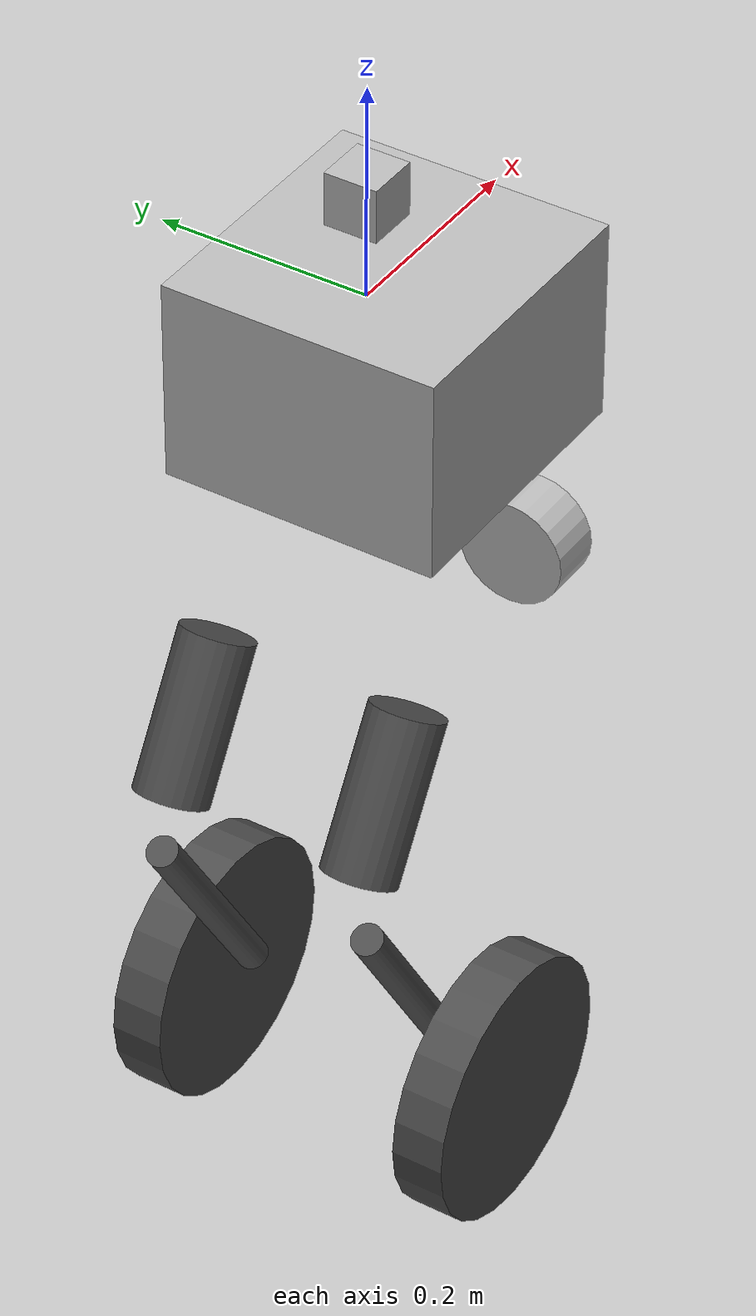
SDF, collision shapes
<sdf version='1.7'>
  <model name='wheel_biped'>
    <link name='base_Link'>
      <inertial>
        <pose>0.04576 0.00014 -0.16398 0 -0 0</pose>
        <mass>9.585</mass>
        <inertia>
          <ixx>0.14011</ixx>
          <ixy>0.000534939</ixy>
          <ixz>0.0281841</ixz>
          <iyy>0.110641</iyy>
          <iyz>-2.7278e-05</iyz>
          <izz>0.0989445</izz>
        </inertia>
      </inertial>
      <collision name='base_Link_collision'>
        <pose>0.03 0 -0.072 0 -0 0</pose>
        <geometry>
          <box>
            <size>0.27 0.26 0.19</size>
          </box>
        </geometry>
      </collision>
      <visual name='base_Link_visual'>
        <pose>0 0 0 0 -0 0</pose>
        <geometry>
          <mesh>
            <scale>1 1 1</scale>
            <uri>model://WF_TRON1A/meshes/base_Link.STL</uri>
          </mesh>
        </geometry>
      </visual>
    </link>
    <link name = "lidar_Link">
      <pose>0.0 0.0 0.1 0.0 0.0 0.0</pose>
      <inertial>
        <mass>0.1</mass>
        <inertia>
          <ixx>0.0001</ixx>
          <ixy>0.0</ixy>
          <ixz>0.0</ixz>
          <iyy>0.0001</iyy>
          <iyz>0.0</iyz>
          <izz>0.0001</izz>
        </inertia>
      </inertial>
      <collision name = "lidar_collision">
        <geometry>
          <box>
            <size>0.05 0.05 0.05</size>
          </box>
        </geometry>
      </collision>
      <visual name='lidar_visual'>
        <pose>0 0 0 0 -0 0</pose>
        <geometry>
          <mesh>
            <scale>1 1 1</scale>
            <uri>model://meshes/livox_mid-360-90x.dae</uri>
          </mesh>
        </geometry>
      </visual>

      <sensor type="ray" name="laser_livox">
        <pose>0 0 0.05 0 0 0</pose>
        <visualize>true</visualize>
        <always_on>True</always_on>
        <update_rate>10</update_rate>
        <!-- This ray plgin is only for visualization. -->
        <plugin name="gazebo_ros_laser_controller" filename="liblivox_laser_simulation.so">
			  <ray>
			  <scan>
				  <horizontal>
				    <samples>100</samples>
				    <resolution>1</resolution>
				    <min_angle>-3.1415926535897931</min_angle>
            <max_angle>3.1415926535897931</max_angle>
				  </horizontal>
				  <vertical>
				    <samples>50</samples>
				    <resolution>1</resolution>
				    <min_angle>-3.1415926535897931</min_angle>
            <max_angle>3.1415926535897931</max_angle>
				  </vertical>
			  </scan>
			  <range>
				  <min>0.1</min>
				  <max>40</max>
				  <resolution>1</resolution>
			  </range>
			  <noise>
				  <type>gaussian</type>
				  <mean>0.0</mean>
				  <stddev>0.0</stddev>
			  </noise>
			  </ray>
          <visualize>True</visualize>
		      <samples>20000</samples>
		      <downsample>1</downsample>
		      <csv_file_name>mid360-real-centr.csv</csv_file_name>
          <publish_pointcloud_type>2</publish_pointcloud_type>
		      <ros_topic>/livox/lidar</ros_topic>
          <frameName>base_link</frameName>
        </plugin>
      </sensor>

    </link>

    <joint name="lidar_joint" type="fixed">
      <parent>base_Link</parent>
      <child>lidar_Link</child>
      <pose>0 0 0.1 0 0 0</pose>
    </joint>

    <joint name='abad_L_Joint' type='revolute'>
      <pose relative_to='base_Link'>0.05556 0.105 -0.2602 0 -0 0</pose>
      <parent>base_Link</parent>
      <child>abad_L_Link</child>
      <axis>
        <xyz>1 0 0</xyz>
        <limit>
          <lower>-0.38397</lower>
          <upper>1.39626</upper>
          <effort>80</effort>
          <velocity>15</velocity>
        </limit>
        <dynamics>
          <spring_reference>0</spring_reference>
          <spring_stiffness>0</spring_stiffness>
        </dynamics>
      </axis>
    </joint>
    <link name='abad_L_Link'>
      <pose relative_to='abad_L_Joint'>0 0 0 0 -0 0</pose>
      <inertial>
        <pose>-0.06977 0.04479 0.00057 0 -0 0</pose>
        <mass>1.469</mass>
        <inertia>
          <ixx>0.00155538</ixx>
          <ixy>0.00039778</ixy>
          <ixz>-1.31e-05</ixz>
          <iyy>0.00235925</iyy>
          <iyz>-9.8e-07</iyz>
          <izz>0.00208092</izz>
        </inertia>
      </inertial>
      <collision name='abad_L_Link_collision'>
        <pose>0.03 0 0 1.57 -0 1.57</pose>
        <geometry>
          <cylinder>
            <length>0.05</length>
            <radius>0.05</radius>
          </cylinder>
        </geometry>
      </collision>
      <visual name='abad_L_Link_visual'>
        <pose>0 0 0 0 -0 0</pose>
        <geometry>
          <mesh>
            <scale>1 1 1</scale>
            <uri>model://WF_TRON1A/meshes/abad_L_Link.STL</uri>
          </mesh>
        </geometry>
      </visual>
    </link>
    <joint name='hip_L_Joint' type='revolute'>
      <pose relative_to='abad_L_Link'>-0.077 0.0205 0 0 -0 0</pose>
      <parent>abad_L_Link</parent>
      <child>hip_L_Link</child>
      <axis>
        <xyz>0 1 0</xyz>
        <limit>
          <lower>-1.01229</lower>
          <upper>1.39626</upper>
          <effort>80</effort>
          <velocity>15</velocity>
        </limit>
        <dynamics>
          <spring_reference>0</spring_reference>
          <spring_stiffness>0</spring_stiffness>
        </dynamics>
      </axis>
    </joint>
    <link name='hip_L_Link'>
      <pose relative_to='hip_L_Joint'>0 0 0 0 -0 0</pose>
      <inertial>
        <pose>-0.02869 -0.0477 -0.03992 0 -0 0</pose>
        <mass>2.3</mass>
        <inertia>
          <ixx>0.0169373</ixx>
          <ixy>0.00164703</ixy>
          <ixz>-0.00923253</ixz>
          <iyy>0.0228533</iyy>
          <iyz>0.0022024</iyz>
          <izz>0.00933419</izz>
        </inertia>
      </inertial>
      <collision name='hip_L_Link_collision'>
        <pose>-0.1 -0.03 -0.14 0 0.53 0</pose>
        <geometry>
          <cylinder>
            <length>0.15</length>
            <radius>0.035</radius>
          </cylinder>
        </geometry>
        <surface>
          <contact>
            <ode/>
          </contact>
          <friction>
            <ode>
              <mu>0.2</mu>
              <mu2>0.2</mu2>
            </ode>
          </friction>
        </surface>
      </collision>
      <visual name='hip_L_Link_visual'>
        <pose>0 0 0 0 -0 0</pose>
        <geometry>
          <mesh>
            <scale>1 1 1</scale>
            <uri>model://WF_TRON1A/meshes/hip_L_Link.STL</uri>
          </mesh>
        </geometry>
        <material>
          <script>
            <name>Gazebo/DarkGrey</name>
            <uri>file://media/materials/scripts/gazebo.material</uri>
          </script>
        </material>
      </visual>
    </link>
    <joint name='knee_L_Joint' type='revolute'>
      <pose relative_to='hip_L_Link'>-0.15 -0.0205 -0.25981 0 -0 0</pose>
      <parent>hip_L_Link</parent>
      <child>knee_L_Link</child>
      <axis>
        <xyz>0 -1 0</xyz>
        <limit>
          <lower>-0.872665</lower>
          <upper>1.36136</upper>
          <effort>80</effort>
          <velocity>15</velocity>
        </limit>
        <dynamics>
          <spring_reference>0</spring_reference>
          <spring_stiffness>0</spring_stiffness>
        </dynamics>
      </axis>
    </joint>
    <link name='knee_L_Link'>
      <pose relative_to='knee_L_Joint'>0 0 0 0 -0 0</pose>
      <inertial>
        <pose>0.11913 0.01106 -0.20363 0 -0 0</pose>
        <mass>1.49</mass>
        <inertia>
          <ixx>0.0132328</ixx>
          <ixy>-0.00043546</ixy>
          <ixz>0.00693569</ixz>
          <iyy>0.0176614</iyy>
          <iyz>0.00079087</iyz>
          <izz>0.00501698</izz>
        </inertia>
      </inertial>
      <collision name='knee_L_Link_collision'>
        <pose>0.078 0 -0.12 0 -0.55 0</pose>
        <geometry>
          <cylinder>
            <length>0.26</length>
            <radius>0.015</radius>
          </cylinder>
        </geometry>
        <surface>
          <contact>
            <ode>
              <kp>1e+06</kp>
              <kd>100</kd>
            </ode>
          </contact>
          <friction>
            <ode>
              <mu>0.2</mu>
              <mu2>0.2</mu2>
            </ode>
          </friction>
        </surface>
      </collision>
      <visual name='knee_L_Link_visual'>
        <pose>0 0 0 0 -0 0</pose>
        <geometry>
          <mesh>
            <scale>1 1 1</scale>
            <uri>model://WF_TRON1A/meshes/knee_L_Link.STL</uri>
          </mesh>
        </geometry>
        <material>
          <script>
            <name>Gazebo/DarkGrey</name>
            <uri>file://media/materials/scripts/gazebo.material</uri>
          </script>
        </material>
      </visual>
      <self_collide>0</self_collide>
    </link>
    <joint name='wheel_L_Joint' type='revolute'>
      <pose relative_to='knee_L_Link'>0.15 0.0435 -0.25981 0 -0 0</pose>
      <parent>knee_L_Link</parent>
      <child>wheel_L_Link</child>
      <axis>
        <xyz>0 1 0</xyz>
        <limit>
          <lower>-1e+06</lower>
          <upper>1e+06</upper>
          <effort>40</effort>
          <velocity>40</velocity>
        </limit>
        <dynamics>
          <damping>0</damping>
          <friction>0.01</friction>
          <spring_reference>0</spring_reference>
          <spring_stiffness>0</spring_stiffness>
        </dynamics>
      </axis>
    </joint>
    <link name='wheel_L_Link'>
      <pose relative_to='wheel_L_Joint'>0 0 0 0 -0 0</pose>
      <inertial>
        <pose>3e-05 0.00807 -2e-05 0 -0 0</pose>
        <mass>1.08</mass>
        <inertia>
          <ixx>0.00515512</ixx>
          <ixy>1e-08</ixy>
          <ixz>-9.7e-07</ixz>
          <iyy>0.00974272</iyy>
          <iyz>-1e-08</iyz>
          <izz>0.005154</izz>
        </inertia>
      </inertial>
      <collision name='wheel_L_Link_collision'>
        <pose>0 0 0 1.5708 -0 0</pose>
        <geometry>
          <cylinder>
            <length>0.05</length>
            <radius>0.127</radius>
          </cylinder>
        </geometry>
        <surface>
          <contact>
            <ode>
              <kp>1e+06</kp>
              <kd>1</kd>
            </ode>
          </contact>
          <friction>
            <ode>
              <mu>0.6</mu>
              <mu2>0.6</mu2>
            </ode>
          </friction>
        </surface>
      </collision>
      <visual name='wheel_L_Link_visual'>
        <pose>0 0 0 0 -0 0</pose>
        <geometry>
          <mesh>
            <scale>1 1 1</scale>
            <uri>model://WF_TRON1A/meshes/wheel_L_Link.STL</uri>
          </mesh>
        </geometry>
        <material>
          <script>
            <name>Gazebo/DarkGrey</name>
            <uri>file://media/materials/scripts/gazebo.material</uri>
          </script>
        </material>
      </visual>
      <self_collide>1</self_collide>
    </link>
    <joint name='abad_R_Joint' type='revolute'>
      <pose relative_to='base_Link'>0.05556 -0.105 -0.2602 0 -0 0</pose>
      <parent>base_Link</parent>
      <child>abad_R_Link</child>
      <axis>
        <xyz>1 0 0</xyz>
        <limit>
          <lower>-1.39626</lower>
          <upper>0.38397</upper>
          <effort>80</effort>
          <velocity>15</velocity>
        </limit>
        <dynamics>
          <spring_reference>0</spring_reference>
          <spring_stiffness>0</spring_stiffness>
        </dynamics>
      </axis>
    </joint>
    <link name='abad_R_Link'>
      <pose relative_to='abad_R_Joint'>0 0 0 0 -0 0</pose>
      <inertial>
        <pose>-0.06977 -0.04479 0.00057 0 -0 0</pose>
        <mass>1.469</mass>
        <inertia>
          <ixx>0.00155538</ixx>
          <ixy>-0.00039778</ixy>
          <ixz>-1.31e-05</ixz>
          <iyy>0.00235925</iyy>
          <iyz>9.8e-07</iyz>
          <izz>0.00208092</izz>
        </inertia>
      </inertial>
      <collision name='abad_R_Link_collision'>
        <pose>0.03 0 0 1.57 -0 1.57</pose>
        <geometry>
          <cylinder>
            <length>0.05</length>
            <radius>0.05</radius>
          </cylinder>
        </geometry>
      </collision>
      <visual name='abad_R_Link_visual'>
        <pose>0 0 0 0 -0 0</pose>
        <geometry>
          <mesh>
            <scale>1 1 1</scale>
            <uri>model://WF_TRON1A/meshes/abad_R_Link.STL</uri>
          </mesh>
        </geometry>
      </visual>
    </link>
    <joint name='hip_R_Joint' type='revolute'>
      <pose relative_to='abad_R_Link'>-0.077 -0.0205 0 0 -0 0</pose>
      <parent>abad_R_Link</parent>
      <child>hip_R_Link</child>
      <axis>
        <xyz>0 -1 0</xyz>
        <limit>
          <lower>-1.39626</lower>
          <upper>1.01229</upper>
          <effort>80</effort>
          <velocity>15</velocity>
        </limit>
        <dynamics>
          <spring_reference>0</spring_reference>
          <spring_stiffness>0</spring_stiffness>
        </dynamics>
      </axis>
    </joint>
    <link name='hip_R_Link'>
      <pose relative_to='hip_R_Joint'>0 0 0 0 -0 0</pose>
      <inertial>
        <pose>-0.02869 0.0477 -0.03992 0 -0 0</pose>
        <mass>2.3</mass>
        <inertia>
          <ixx>0.0169373</ixx>
          <ixy>-0.00164703</ixy>
          <ixz>-0.00923253</ixz>
          <iyy>0.0228533</iyy>
          <iyz>-0.0022024</iyz>
          <izz>0.00933419</izz>
        </inertia>
      </inertial>
      <collision name='hip_R_Link_collision'>
        <pose>-0.1 0.03 -0.14 0 0.53 0</pose>
        <geometry>
          <cylinder>
            <length>0.15</length>
            <radius>0.035</radius>
          </cylinder>
        </geometry>
        <surface>
          <contact>
            <ode/>
          </contact>
          <friction>
            <ode>
              <mu>0.2</mu>
              <mu2>0.2</mu2>
            </ode>
          </friction>
        </surface>
      </collision>
      <visual name='hip_R_Link_visual'>
        <pose>0 0 0 0 -0 0</pose>
        <geometry>
          <mesh>
            <scale>1 1 1</scale>
            <uri>model://WF_TRON1A/meshes/hip_R_Link.STL</uri>
          </mesh>
        </geometry>
        <material>
          <script>
            <name>Gazebo/DarkGrey</name>
            <uri>file://media/materials/scripts/gazebo.material</uri>
          </script>
        </material>
      </visual>
    </link>
    <joint name='knee_R_Joint' type='revolute'>
      <pose relative_to='hip_R_Link'>-0.15 0.0205 -0.25981 0 -0 0</pose>
      <parent>hip_R_Link</parent>
      <child>knee_R_Link</child>
      <axis>
        <xyz>0 1 0</xyz>
        <limit>
          <lower>-1.36136</lower>
          <upper>0.872665</upper>
          <effort>80</effort>
          <velocity>15</velocity>
        </limit>
        <dynamics>
          <spring_reference>0</spring_reference>
          <spring_stiffness>0</spring_stiffness>
        </dynamics>
      </axis>
    </joint>
    <link name='knee_R_Link'>
      <pose relative_to='knee_R_Joint'>0 0 0 0 -0 0</pose>
      <inertial>
        <pose>0.11913 -0.01106 -0.20363 0 -0 0</pose>
        <mass>1.49</mass>
        <inertia>
          <ixx>0.0132328</ixx>
          <ixy>0.00043546</ixy>
          <ixz>0.00693569</ixz>
          <iyy>0.0176614</iyy>
          <iyz>-0.00079087</iyz>
          <izz>0.00501698</izz>
        </inertia>
      </inertial>
      <collision name='knee_R_Link_collision'>
        <pose>0.078 0 -0.12 0 -0.55 0</pose>
        <geometry>
          <cylinder>
            <length>0.26</length>
            <radius>0.015</radius>
          </cylinder>
        </geometry>
        <surface>
          <contact>
            <ode>
              <kp>1e+06</kp>
              <kd>100</kd>
            </ode>
          </contact>
          <friction>
            <ode>
              <mu>0.2</mu>
              <mu2>0.2</mu2>
            </ode>
          </friction>
        </surface>
      </collision>
      <visual name='knee_R_Link_visual'>
        <pose>0 0 0 0 -0 0</pose>
        <geometry>
          <mesh>
            <scale>1 1 1</scale>
            <uri>model://WF_TRON1A/meshes/knee_R_Link.STL</uri>
          </mesh>
        </geometry>
        <material>
          <script>
            <name>Gazebo/DarkGrey</name>
            <uri>file://media/materials/scripts/gazebo.material</uri>
          </script>
        </material>
      </visual>
      <self_collide>0</self_collide>
    </link>
    <joint name='wheel_R_Joint' type='revolute'>
      <pose relative_to='knee_R_Link'>0.15 -0.0435 -0.25981 0 -0 0</pose>
      <parent>knee_R_Link</parent>
      <child>wheel_R_Link</child>
      <axis>
        <xyz>0 1 0</xyz>
        <limit>
          <lower>-1e+06</lower>
          <upper>1e+06</upper>
          <effort>40</effort>
          <velocity>40</velocity>
        </limit>
        <dynamics>
          <damping>0</damping>
          <friction>0.01</friction>
          <spring_reference>0</spring_reference>
          <spring_stiffness>0</spring_stiffness>
        </dynamics>
      </axis>
    </joint>
    <link name='wheel_R_Link'>
      <pose relative_to='wheel_R_Joint'>0 0 0 0 -0 0</pose>
      <inertial>
        <pose>3e-05 -0.00807 -2e-05 0 -0 0</pose>
        <mass>1.08</mass>
        <inertia>
          <ixx>0.00515512</ixx>
          <ixy>-1e-08</ixy>
          <ixz>-9.7e-07</ixz>
          <iyy>0.00974272</iyy>
          <iyz>1e-08</iyz>
          <izz>0.005154</izz>
        </inertia>
      </inertial>
      <collision name='wheel_R_Link_collision'>
        <pose>0 0 0 1.5708 -0 0</pose>
        <geometry>
          <cylinder>
            <length>0.05</length>
            <radius>0.127</radius>
          </cylinder>
        </geometry>
        <surface>
          <contact>
            <ode>
              <kp>1e+06</kp>
              <kd>1</kd>
            </ode>
          </contact>
          <friction>
            <ode>
              <mu>0.6</mu>
              <mu2>0.6</mu2>
            </ode>
          </friction>
        </surface>
      </collision>
      <visual name='wheel_R_Link_visual'>
        <pose>0 0 0 0 -0 0</pose>
        <geometry>
          <mesh>
            <scale>1 1 1</scale>
            <uri>model://WF_TRON1A/meshes/wheel_R_Link.STL</uri>
          </mesh>
        </geometry>
        <material>
          <script>
            <name>Gazebo/DarkGrey</name>
            <uri>file://media/materials/scripts/gazebo.material</uri>
          </script>
        </material>
      </visual>
      <self_collide>1</self_collide>
    </link>
    <joint name='limx_imu_joint' type='revolute'>
      <pose relative_to='base_Link'>0 0 0 0 -0 0</pose>
      <parent>base_Link</parent>
      <child>limx_imu</child>
      <axis>
        <limit>
          <lower>0</lower>
          <upper>0</upper>
        </limit>
        <dynamics>
          <damping>0</damping>
          <friction>0</friction>
          <spring_reference>0</spring_reference>
          <spring_stiffness>0</spring_stiffness>
        </dynamics>
        <xyz>0 0 1</xyz>
      </axis>
      <physics>
        <ode>
          <limit>
            <cfm>0</cfm>
            <erp>0.2</erp>
          </limit>
        </ode>
      </physics>
    </joint>
    <link name='limx_imu'>
      <pose relative_to='limx_imu_joint'>0 0 0 0 -0 0</pose>
      <inertial>
        <pose>0 0 0 0 -0 0</pose>
        <mass>0.01</mass>
        <inertia>
          <ixx>1e-06</ixx>
          <ixy>0</ixy>
          <ixz>0</ixz>
          <iyy>1e-06</iyy>
          <iyz>0</iyz>
          <izz>1e-06</izz>
        </inertia>
      </inertial>
      <visual name='limx_imu_visual'>
        <pose>0 0 0 0 -0 0</pose>
        <geometry>
          <box>
            <size>0.015 0.015 0.004</size>
          </box>
        </geometry>
        <material>
          <script>
            <name>Gazebo/Orange</name>
            <uri>file://media/materials/scripts/gazebo.material</uri>
          </script>
        </material>
      </visual>
    </link>
    <plugin name='gazebo_ros_control' filename='libpointfoot_hw_sim.so'>
      <robotNamespace>/</robotNamespace>
      <robotParam>robot_description</robotParam>
      <robotSimType>pointfoot_gazebo/PointFootHWSim</robotSimType>
    </plugin>
    <static>0</static>
    <plugin name='p3d_base_controller' filename='libgazebo_ros_p3d.so'>
      <alwaysOn>1</alwaysOn>
      <updateRate>1000.0</updateRate>
      <bodyName>base_Link</bodyName>
      <topicName>ground_truth/state</topicName>
      <gaussianNoise>0</gaussianNoise>
      <frameName>world</frameName>
      <xyzOffsets>0 0 0</xyzOffsets>
      <rpyOffsets>0 0 0</rpyOffsets>
    </plugin>
  </model>
</sdf>
